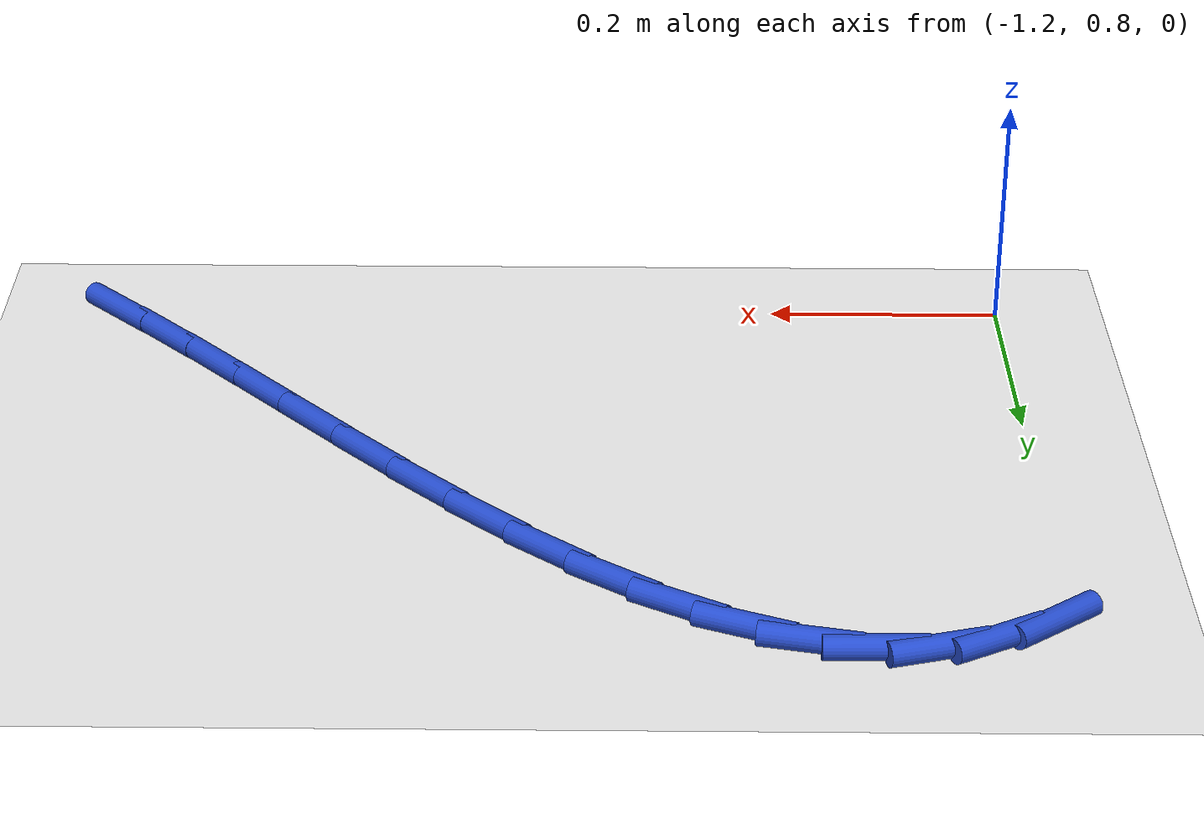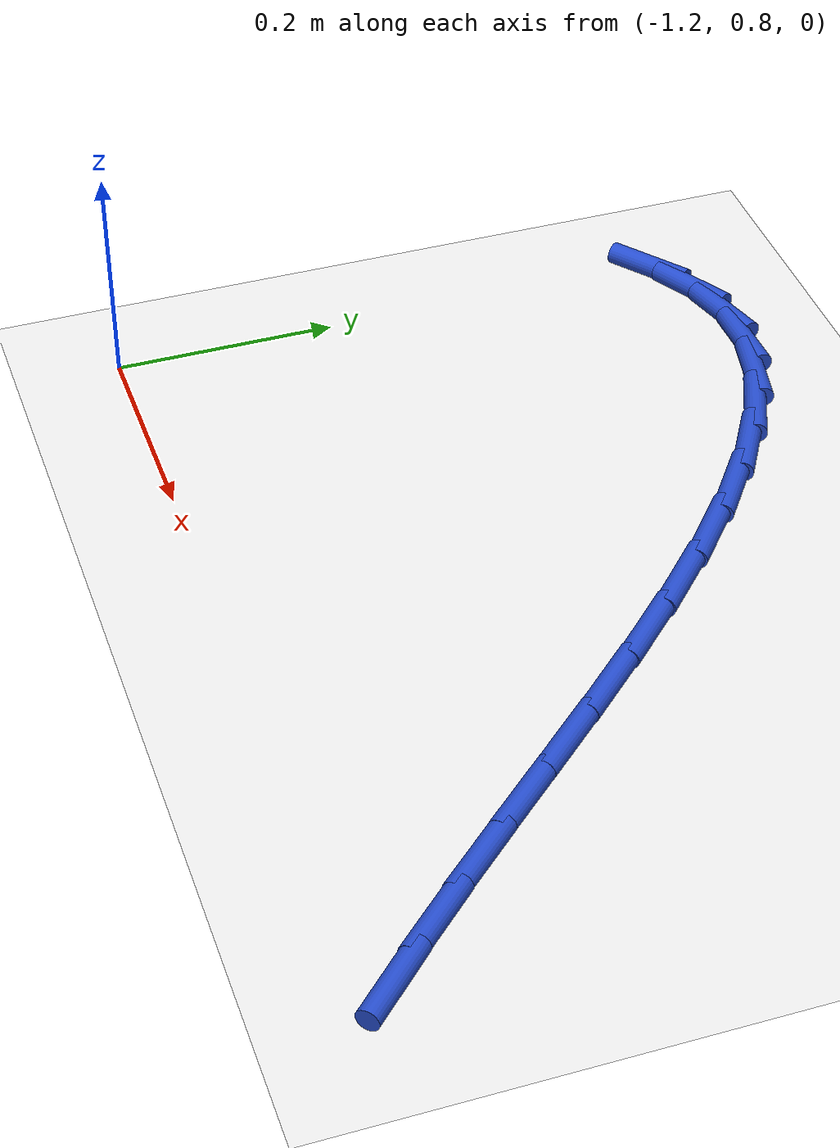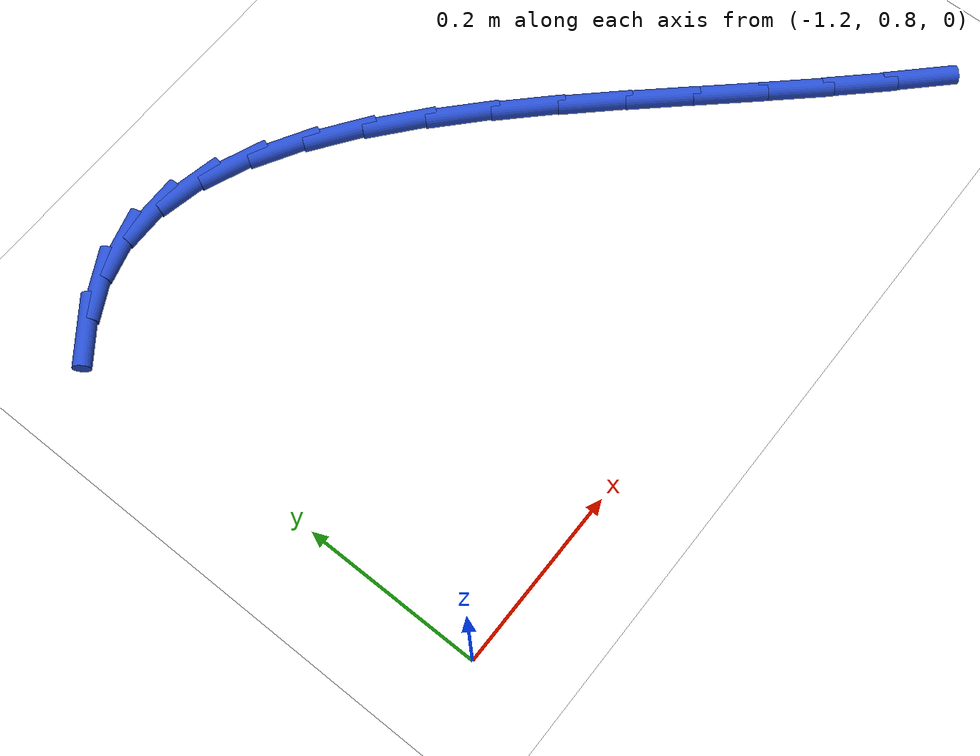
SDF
<sdf version="1.6">
 <world name="default">
  <model name="ground_plane">
   <static>1</static>
   <link name="link">
    <collision name="collision">
     <geometry><plane><normal>0 0 1</normal><size>100 100</size></plane></geometry>
     <surface><friction><ode><mu>100</mu><mu2>50</mu2></ode></friction></surface>
    </collision>
    <visual name="visual">
     <cast_shadows>0</cast_shadows>
     <geometry><plane><normal>0 0 1</normal><size>100 100</size></plane></geometry>
     <material>
      <script><uri>file://media/materials/scripts/gazebo.material</uri><name>Gazebo/WhiteGlow</name></script>
     </material>
    </visual>
   </link>
  </model>
  <model name="line">
   <link name="link_16">
    <pose>-0.42034174958845993 0.8138748476856187 0.01 0 1.57 -0.7897849583384776</pose>
    <collision name="collision">
     <geometry><cylinder><radius>0.01</radius><length>0.08</length></cylinder></geometry>
    </collision>
    <visual name="visual">
     <material>
      <script><name>Gazebo/Blue</name><uri>file://media/materials/scripts/gazebo.material</uri></script>
     </material>
     <geometry><cylinder><radius>0.01</radius><length>0.08</length></cylinder></geometry>
    </visual>
   </link>
   <link name="link_17">
    <pose>-0.46678645155645354 0.8607288344949705 0.01 0 1.57 -0.8099637330973302</pose>
    <collision name="collision">
     <geometry><cylinder><radius>0.01</radius><length>0.08</length></cylinder></geometry>
    </collision>
    <visual name="visual">
     <material>
      <script><name>Gazebo/Blue</name><uri>file://media/materials/scripts/gazebo.material</uri></script>
     </material>
     <geometry><cylinder><radius>0.01</radius><length>0.08</length></cylinder></geometry>
    </visual>
   </link>
   <link name="link_18">
    <pose>-0.514085475592227 0.9104107294020268 0.01 0 1.57 -0.8259904070623062</pose>
    <collision name="collision">
     <geometry><cylinder><radius>0.01</radius><length>0.08</length></cylinder></geometry>
    </collision>
    <visual name="visual">
     <material>
      <script><name>Gazebo/Blue</name><uri>file://media/materials/scripts/gazebo.material</uri></script>
     </material>
     <geometry><cylinder><radius>0.01</radius><length>0.08</length></cylinder></geometry>
    </visual>
   </link>
   <link name="link_19">
    <pose>-0.5620485667684596 0.9624347525723685 0.01 0 1.57 -0.8315050519274139</pose>
    <collision name="collision">
     <geometry><cylinder><radius>0.01</radius><length>0.08</length></cylinder></geometry>
    </collision>
    <visual name="visual">
     <material>
      <script><name>Gazebo/Blue</name><uri>file://media/materials/scripts/gazebo.material</uri></script>
     </material>
     <geometry><cylinder><radius>0.01</radius><length>0.08</length></cylinder></geometry>
    </visual>
   </link>
   <link name="link_20">
    <pose>-0.6105410809473838 1.0156185708793246 0.01 0 1.57 -0.8271357999440787</pose>
    <collision name="collision">
     <geometry><cylinder><radius>0.01</radius><length>0.08</length></cylinder></geometry>
    </collision>
    <visual name="visual">
     <material>
      <script><name>Gazebo/Blue</name><uri>file://media/materials/scripts/gazebo.material</uri></script>
     </material>
     <geometry><cylinder><radius>0.01</radius><length>0.08</length></cylinder></geometry>
    </visual>
   </link>
   <link name="link_21">
    <pose>-0.6594293128027976 1.0687680921060736 0.01 0 1.57 -0.8128064559478101</pose>
    <collision name="collision">
     <geometry><cylinder><radius>0.01</radius><length>0.08</length></cylinder></geometry>
    </collision>
    <visual name="visual">
     <material>
      <script><name>Gazebo/Blue</name><uri>file://media/materials/scripts/gazebo.material</uri></script>
     </material>
     <geometry><cylinder><radius>0.01</radius><length>0.08</length></cylinder></geometry>
    </visual>
   </link>
   <link name="link_22">
    <pose>-0.7085795570085 1.1206892240357933 0.01 0 1.57 -0.7876263984369747</pose>
    <collision name="collision">
     <geometry><cylinder><radius>0.01</radius><length>0.08</length></cylinder></geometry>
    </collision>
    <visual name="visual">
     <material>
      <script><name>Gazebo/Blue</name><uri>file://media/materials/scripts/gazebo.material</uri></script>
     </material>
     <geometry><cylinder><radius>0.01</radius><length>0.08</length></cylinder></geometry>
    </visual>
   </link>
   <link name="link_23">
    <pose>-0.7578581082382896 1.1701878744516627 0.01 0 1.57 -0.749775930404626</pose>
    <collision name="collision">
     <geometry><cylinder><radius>0.01</radius><length>0.08</length></cylinder></geometry>
    </collision>
    <visual name="visual">
     <material>
      <script><name>Gazebo/Blue</name><uri>file://media/materials/scripts/gazebo.material</uri></script>
     </material>
     <geometry><cylinder><radius>0.01</radius><length>0.08</length></cylinder></geometry>
    </visual>
   </link>
   <link name="link_24">
    <pose>-0.8071312611659651 1.2160699511368602 0.01 0 1.57 -0.6962542216998556</pose>
    <collision name="collision">
     <geometry><cylinder><radius>0.01</radius><length>0.08</length></cylinder></geometry>
    </collision>
    <visual name="visual">
     <material>
      <script><name>Gazebo/Blue</name><uri>file://media/materials/scripts/gazebo.material</uri></script>
     </material>
     <geometry><cylinder><radius>0.01</radius><length>0.08</length></cylinder></geometry>
    </visual>
   </link>
   <link name="link_25">
    <pose>-0.8562653104653251 1.2571413618745635 0.01 0 1.57 -0.6224923342525761</pose>
    <collision name="collision">
     <geometry><cylinder><radius>0.01</radius><length>0.08</length></cylinder></geometry>
    </collision>
    <visual name="visual">
     <material>
      <script><name>Gazebo/Blue</name><uri>file://media/materials/scripts/gazebo.material</uri></script>
     </material>
     <geometry><cylinder><radius>0.01</radius><length>0.08</length></cylinder></geometry>
    </visual>
   </link>
   <link name="link_26">
    <pose>-0.9051265508101688 1.292208014447952 0.01 0 1.57 -0.5219325247254823</pose>
    <collision name="collision">
     <geometry><cylinder><radius>0.01</radius><length>0.08</length></cylinder></geometry>
    </collision>
    <visual name="visual">
     <material>
      <script><name>Gazebo/Blue</name><uri>file://media/materials/scripts/gazebo.material</uri></script>
     </material>
     <geometry><cylinder><radius>0.01</radius><length>0.08</length></cylinder></geometry>
    </visual>
   </link>
   <link name="link_27">
    <pose>-0.953581276874294 1.3200758166402027 0.01 0 1.57 -0.38605447674706816</pose>
    <collision name="collision">
     <geometry><cylinder><radius>0.01</radius><length>0.08</length></cylinder></geometry>
    </collision>
    <visual name="visual">
     <material>
      <script><name>Gazebo/Blue</name><uri>file://media/materials/scripts/gazebo.material</uri></script>
     </material>
     <geometry><cylinder><radius>0.01</radius><length>0.08</length></cylinder></geometry>
    </visual>
   </link>
   <link name="link_28">
    <pose>-1.0014957833315001 1.3395506762344944 0.01 0 1.57 -0.20632919121150695</pose>
    <collision name="collision">
     <geometry><cylinder><radius>0.01</radius><length>0.08</length></cylinder></geometry>
    </collision>
    <visual name="visual">
     <material>
      <script><name>Gazebo/Blue</name><uri>file://media/materials/scripts/gazebo.material</uri></script>
     </material>
     <geometry><cylinder><radius>0.01</radius><length>0.08</length></cylinder></geometry>
    </visual>
   </link>
   <link name="link_29">
    <pose>-1.0487363648555854 1.3494385010140058 0.01 0 1.57 0.019236168326894565</pose>
    <collision name="collision">
     <geometry><cylinder><radius>0.01</radius><length>0.08</length></cylinder></geometry>
    </collision>
    <visual name="visual">
     <material>
      <script><name>Gazebo/Blue</name><uri>file://media/materials/scripts/gazebo.material</uri></script>
     </material>
     <geometry><cylinder><radius>0.01</radius><length>0.08</length></cylinder></geometry>
    </visual>
   </link>
   <link name="link_30">
    <pose>-1.0951693161203488 1.3485451987619155 0.01 0 1.57 0.2751748421980075</pose>
    <collision name="collision">
     <geometry><cylinder><radius>0.01</radius><length>0.08</length></cylinder></geometry>
    </collision>
    <visual name="visual">
     <material>
      <script><name>Gazebo/Blue</name><uri>file://media/materials/scripts/gazebo.material</uri></script>
     </material>
     <geometry><cylinder><radius>0.01</radius><length>0.08</length></cylinder></geometry>
    </visual>
   </link>
   <link name="link_31">
    <pose>-1.1406647530982534 1.3357001360223764 0.01 0 1.57 0.502539278400772</pose>
    <collision name="collision">
     <geometry><cylinder><radius>0.01</radius><length>0.08</length></cylinder></geometry>
    </collision>
    <visual name="visual">
     <material>
      <script><name>Gazebo/Blue</name><uri>file://media/materials/scripts/gazebo.material</uri></script>
     </material>
     <geometry><cylinder><radius>0.01</radius><length>0.08</length></cylinder></geometry>
    </visual>
   </link>
   <link name="link_32">
    <pose>-1.1853244741677802 1.3111549660181157 0.01 0 1.57 0.6516280556556644</pose>
    <collision name="collision">
     <geometry><cylinder><radius>0.01</radius><length>0.08</length></cylinder></geometry>
    </collision>
    <visual name="visual">
     <material>
      <script><name>Gazebo/Blue</name><uri>file://media/materials/scripts/gazebo.material</uri></script>
     </material>
     <geometry><cylinder><radius>0.01</radius><length>0.08</length></cylinder></geometry>
    </visual>
   </link>
  </model>
 </world>
</sdf>
